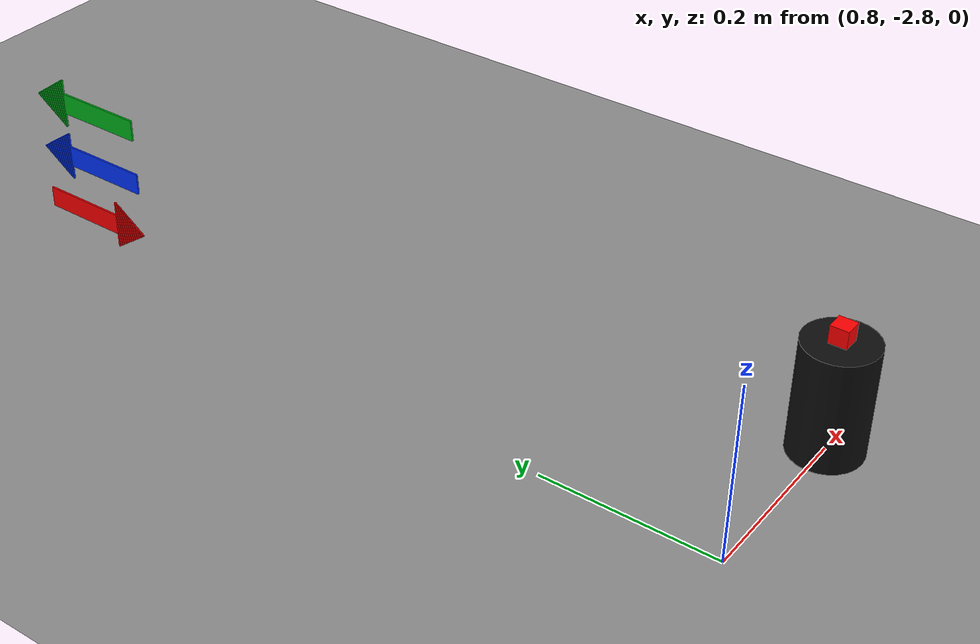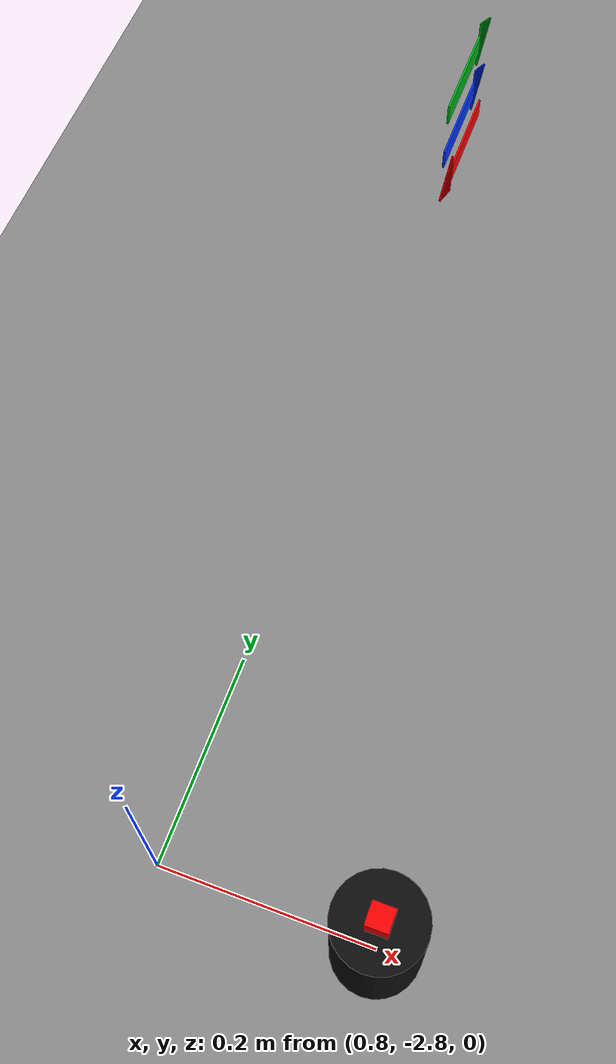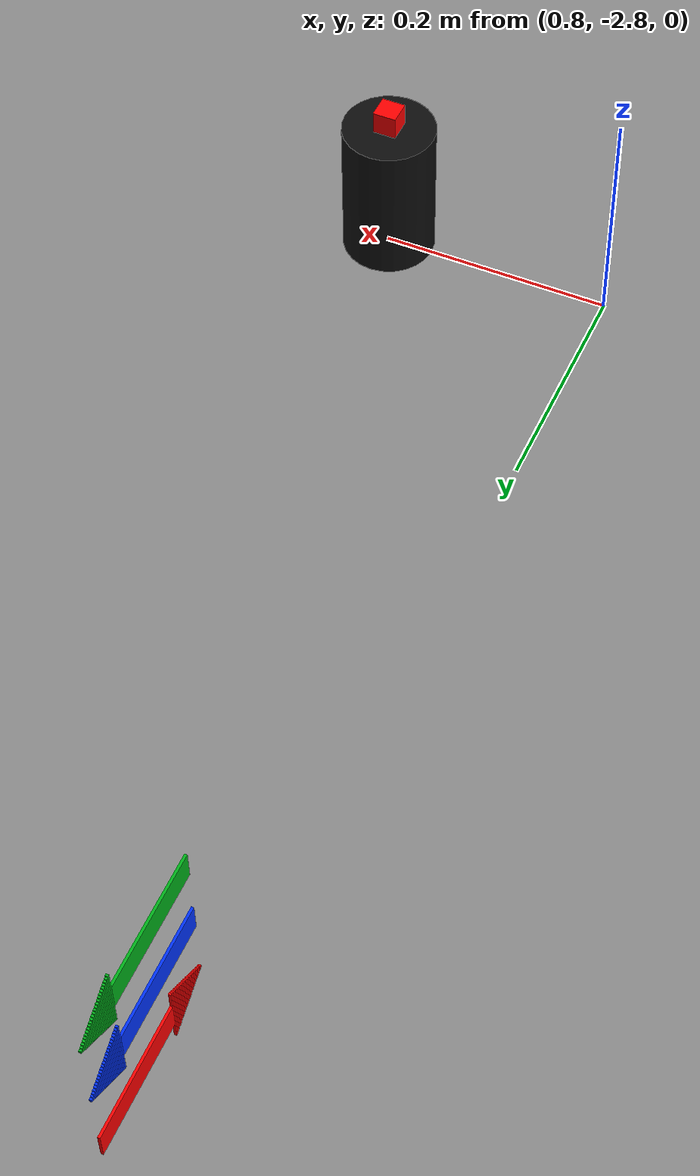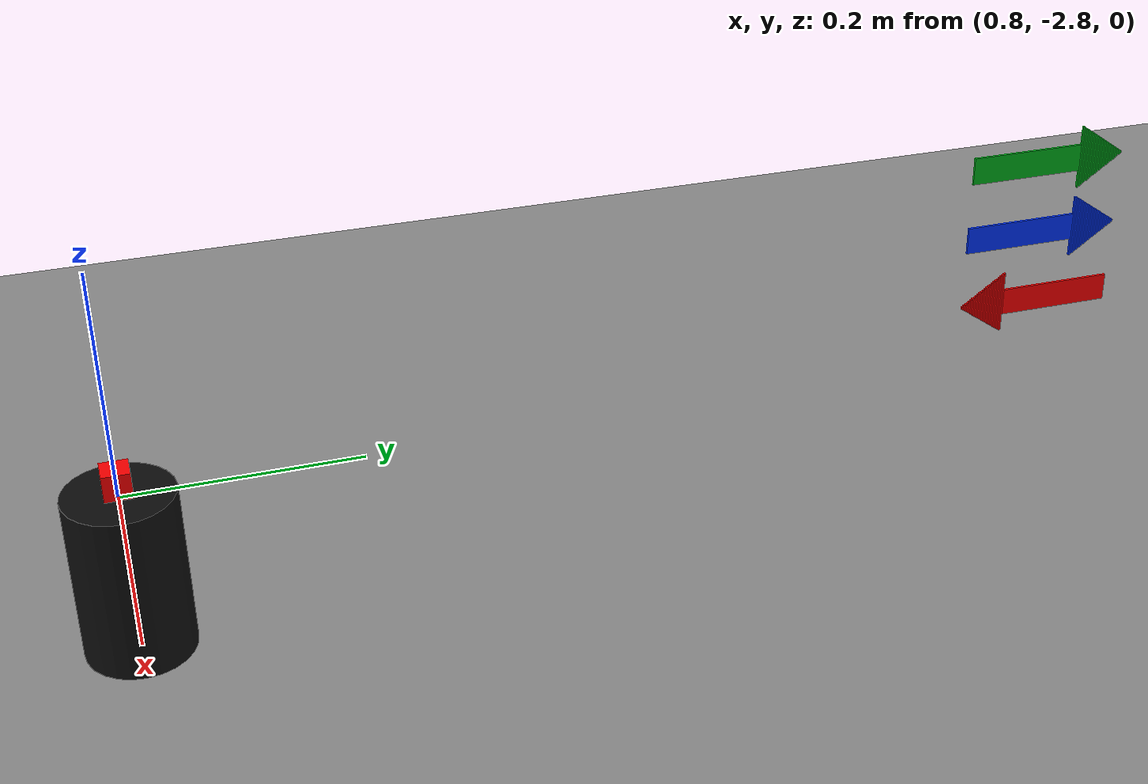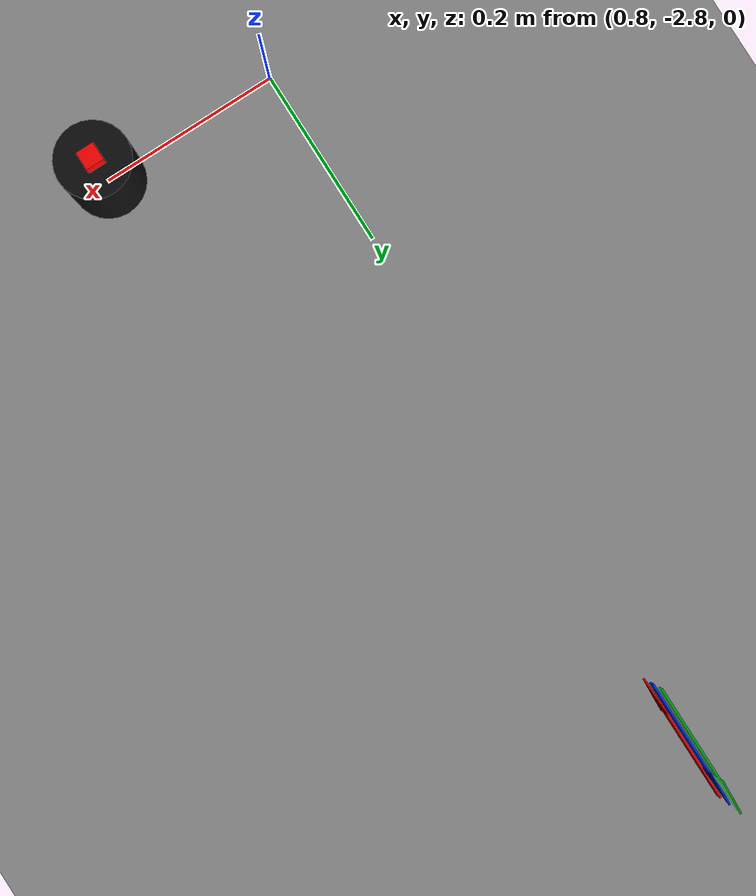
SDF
<sdf version="1.9">
 <world name="ros2_world">
  <model name="ground_plane">
   <static>true</static>
   <link name="link">
    <collision name="collision">
     <geometry><plane><normal>0 0 1</normal><size>10 10</size></plane></geometry>
    </collision>
    <visual name="visual">
     <geometry><plane><normal>0 0 1</normal><size>10 10</size></plane></geometry>
     <material><ambient>0.55 0.55 0.55 1</ambient><diffuse>0.55 0.55 0.55 1</diffuse></material>
    </visual>
   </link>
  </model>
  <model name="soporte_cubo_rojo">
   <static>true</static>
   <pose>1 -2.8 0.06425 0 0 0</pose>
   <link name="link">
    <collision name="colision">
     <geometry><cylinder><radius>0.04</radius><length>0.1285</length></cylinder></geometry>
    </collision>
    <visual name="visual">
     <geometry><cylinder><radius>0.04</radius><length>0.1285</length></cylinder></geometry>
     <material><ambient>0.05 0.05 0.05 1</ambient><diffuse>0.05 0.05 0.05 1</diffuse></material>
    </visual>
   </link>
  </model>
  <model name="cubo_rojo">
   <pose>1 -2.8 0.1387 0 0 0</pose>
   <link name="link">
    <inertial>
     <mass>0.0099</mass>
     <inertia>
      <ixx>6.6000e-07</ixx>
      <iyy>6.6000e-07</iyy>
      <izz>6.6000e-07</izz>
      <ixy>0</ixy>
      <ixz>0</ixz>
      <iyz>0</iyz>
     </inertia>
    </inertial>
    <collision name="colision">
     <geometry><box><size>0.02 0.02 0.02</size></box></geometry>
     <surface><friction><ode><mu>1</mu><mu2>1</mu2></ode></friction></surface>
    </collision>
    <visual name="visual">
     <geometry><box><size>0.02 0.02 0.02</size></box></geometry>
     <material><ambient>1 0 0 1</ambient><diffuse>1 0 0 1</diffuse></material>
    </visual>
   </link>
  </model>
  <model name="flechas">
   <static>true</static>
   <link name="flecha_3">
    <pose>0.814 -2 0.19 0 0 1.5708</pose>
    <visual name="p0">
     <pose>-0.02 0 0 0 0 0</pose>
     <geometry><box><size>0.1 0.002 0.024</size></box></geometry>
     <material><ambient>0 0.7 0.1 1</ambient><diffuse>0 0.7 0.1 1</diffuse></material>
    </visual>
    <visual name="p1">
     <pose>0.0308 0 0 0 0 0</pose>
     <geometry><box><size>0.0016 0.002 0.056</size></box></geometry>
     <material><ambient>0 0.7 0.1 1</ambient><diffuse>0 0.7 0.1 1</diffuse></material>
    </visual>
    <visual name="p2">
     <pose>0.0324 0 0 0 0 0</pose>
     <geometry><box><size>0.0016 0.002 0.05376</size></box></geometry>
     <material><ambient>0 0.7 0.1 1</ambient><diffuse>0 0.7 0.1 1</diffuse></material>
    </visual>
    <visual name="p3">
     <pose>0.034 0 0 0 0 0</pose>
     <geometry><box><size>0.0016 0.002 0.05152</size></box></geometry>
     <material><ambient>0 0.7 0.1 1</ambient><diffuse>0 0.7 0.1 1</diffuse></material>
    </visual>
    <visual name="p4">
     <pose>0.0356 0 0 0 0 0</pose>
     <geometry><box><size>0.0016 0.002 0.04928</size></box></geometry>
     <material><ambient>0 0.7 0.1 1</ambient><diffuse>0 0.7 0.1 1</diffuse></material>
    </visual>
    <visual name="p5">
     <pose>0.0372 0 0 0 0 0</pose>
     <geometry><box><size>0.0016 0.002 0.04704</size></box></geometry>
     <material><ambient>0 0.7 0.1 1</ambient><diffuse>0 0.7 0.1 1</diffuse></material>
    </visual>
    <visual name="p6">
     <pose>0.0388 0 0 0 0 0</pose>
     <geometry><box><size>0.0016 0.002 0.0448</size></box></geometry>
     <material><ambient>0 0.7 0.1 1</ambient><diffuse>0 0.7 0.1 1</diffuse></material>
    </visual>
    <visual name="p7">
     <pose>0.0404 0 0 0 0 0</pose>
     <geometry><box><size>0.0016 0.002 0.04256</size></box></geometry>
     <material><ambient>0 0.7 0.1 1</ambient><diffuse>0 0.7 0.1 1</diffuse></material>
    </visual>
    <visual name="p8">
     <pose>0.042 0 0 0 0 0</pose>
     <geometry><box><size>0.0016 0.002 0.04032</size></box></geometry>
     <material><ambient>0 0.7 0.1 1</ambient><diffuse>0 0.7 0.1 1</diffuse></material>
    </visual>
    <visual name="p9">
     <pose>0.0436 0 0 0 0 0</pose>
     <geometry><box><size>0.0016 0.002 0.03808</size></box></geometry>
     <material><ambient>0 0.7 0.1 1</ambient><diffuse>0 0.7 0.1 1</diffuse></material>
    </visual>
    <visual name="p10">
     <pose>0.0452 0 0 0 0 0</pose>
     <geometry><box><size>0.0016 0.002 0.03584</size></box></geometry>
     <material><ambient>0 0.7 0.1 1</ambient><diffuse>0 0.7 0.1 1</diffuse></material>
    </visual>
    <visual name="p11">
     <pose>0.0468 0 0 0 0 0</pose>
     <geometry><box><size>0.0016 0.002 0.0336</size></box></geometry>
     <material><ambient>0 0.7 0.1 1</ambient><diffuse>0 0.7 0.1 1</diffuse></material>
    </visual>
    <visual name="p12">
     <pose>0.0484 0 0 0 0 0</pose>
     <geometry><box><size>0.0016 0.002 0.03136</size></box></geometry>
     <material><ambient>0 0.7 0.1 1</ambient><diffuse>0 0.7 0.1 1</diffuse></material>
    </visual>
    <visual name="p13">
     <pose>0.05 0 0 0 0 0</pose>
     <geometry><box><size>0.0016 0.002 0.02912</size></box></geometry>
     <material><ambient>0 0.7 0.1 1</ambient><diffuse>0 0.7 0.1 1</diffuse></material>
    </visual>
    <visual name="p14">
     <pose>0.0516 0 0 0 0 0</pose>
     <geometry><box><size>0.0016 0.002 0.02688</size></box></geometry>
     <material><ambient>0 0.7 0.1 1</ambient><diffuse>0 0.7 0.1 1</diffuse></material>
    </visual>
    <visual name="p15">
     <pose>0.0532 0 0 0 0 0</pose>
     <geometry><box><size>0.0016 0.002 0.02464</size></box></geometry>
     <material><ambient>0 0.7 0.1 1</ambient><diffuse>0 0.7 0.1 1</diffuse></material>
    </visual>
    <visual name="p16">
     <pose>0.0548 0 0 0 0 0</pose>
     <geometry><box><size>0.0016 0.002 0.0224</size></box></geometry>
     <material><ambient>0 0.7 0.1 1</ambient><diffuse>0 0.7 0.1 1</diffuse></material>
    </visual>
    <visual name="p17">
     <pose>0.0564 0 0 0 0 0</pose>
     <geometry><box><size>0.0016 0.002 0.02016</size></box></geometry>
     <material><ambient>0 0.7 0.1 1</ambient><diffuse>0 0.7 0.1 1</diffuse></material>
    </visual>
    <visual name="p18">
     <pose>0.058 0 0 0 0 0</pose>
     <geometry><box><size>0.0016 0.002 0.01792</size></box></geometry>
     <material><ambient>0 0.7 0.1 1</ambient><diffuse>0 0.7 0.1 1</diffuse></material>
    </visual>
    <visual name="p19">
     <pose>0.0596 0 0 0 0 0</pose>
     <geometry><box><size>0.0016 0.002 0.01568</size></box></geometry>
     <material><ambient>0 0.7 0.1 1</ambient><diffuse>0 0.7 0.1 1</diffuse></material>
    </visual>
    <visual name="p20">
     <pose>0.0612 0 0 0 0 0</pose>
     <geometry><box><size>0.0016 0.002 0.01344</size></box></geometry>
     <material><ambient>0 0.7 0.1 1</ambient><diffuse>0 0.7 0.1 1</diffuse></material>
    </visual>
    <visual name="p21">
     <pose>0.0628 0 0 0 0 0</pose>
     <geometry><box><size>0.0016 0.002 0.0112</size></box></geometry>
     <material><ambient>0 0.7 0.1 1</ambient><diffuse>0 0.7 0.1 1</diffuse></material>
    </visual>
    <visual name="p22">
     <pose>0.0644 0 0 0 0 0</pose>
     <geometry><box><size>0.0016 0.002 0.00896</size></box></geometry>
     <material><ambient>0 0.7 0.1 1</ambient><diffuse>0 0.7 0.1 1</diffuse></material>
    </visual>
    <visual name="p23">
     <pose>0.066 0 0 0 0 0</pose>
     <geometry><box><size>0.0016 0.002 0.00672</size></box></geometry>
     <material><ambient>0 0.7 0.1 1</ambient><diffuse>0 0.7 0.1 1</diffuse></material>
    </visual>
    <visual name="p24">
     <pose>0.0676 0 0 0 0 0</pose>
     <geometry><box><size>0.0016 0.002 0.00448</size></box></geometry>
     <material><ambient>0 0.7 0.1 1</ambient><diffuse>0 0.7 0.1 1</diffuse></material>
    </visual>
    <visual name="p25">
     <pose>0.0692 0 0 0 0 0</pose>
     <geometry><box><size>0.0016 0.002 0.00224</size></box></geometry>
     <material><ambient>0 0.7 0.1 1</ambient><diffuse>0 0.7 0.1 1</diffuse></material>
    </visual>
   </link>
   <link name="flecha_4">
    <pose>0.814 -2 0.125 0 0 1.5708</pose>
    <visual name="p0">
     <pose>-0.02 0 0 0 0 0</pose>
     <geometry><box><size>0.1 0.002 0.024</size></box></geometry>
     <material><ambient>0 0.2 1 1</ambient><diffuse>0 0.2 1 1</diffuse></material>
    </visual>
    <visual name="p1">
     <pose>0.0308 0 0 0 0 0</pose>
     <geometry><box><size>0.0016 0.002 0.056</size></box></geometry>
     <material><ambient>0 0.2 1 1</ambient><diffuse>0 0.2 1 1</diffuse></material>
    </visual>
    <visual name="p2">
     <pose>0.0324 0 0 0 0 0</pose>
     <geometry><box><size>0.0016 0.002 0.05376</size></box></geometry>
     <material><ambient>0 0.2 1 1</ambient><diffuse>0 0.2 1 1</diffuse></material>
    </visual>
    <visual name="p3">
     <pose>0.034 0 0 0 0 0</pose>
     <geometry><box><size>0.0016 0.002 0.05152</size></box></geometry>
     <material><ambient>0 0.2 1 1</ambient><diffuse>0 0.2 1 1</diffuse></material>
    </visual>
    <visual name="p4">
     <pose>0.0356 0 0 0 0 0</pose>
     <geometry><box><size>0.0016 0.002 0.04928</size></box></geometry>
     <material><ambient>0 0.2 1 1</ambient><diffuse>0 0.2 1 1</diffuse></material>
    </visual>
    <visual name="p5">
     <pose>0.0372 0 0 0 0 0</pose>
     <geometry><box><size>0.0016 0.002 0.04704</size></box></geometry>
     <material><ambient>0 0.2 1 1</ambient><diffuse>0 0.2 1 1</diffuse></material>
    </visual>
    <visual name="p6">
     <pose>0.0388 0 0 0 0 0</pose>
     <geometry><box><size>0.0016 0.002 0.0448</size></box></geometry>
     <material><ambient>0 0.2 1 1</ambient><diffuse>0 0.2 1 1</diffuse></material>
    </visual>
    <visual name="p7">
     <pose>0.0404 0 0 0 0 0</pose>
     <geometry><box><size>0.0016 0.002 0.04256</size></box></geometry>
     <material><ambient>0 0.2 1 1</ambient><diffuse>0 0.2 1 1</diffuse></material>
    </visual>
    <visual name="p8">
     <pose>0.042 0 0 0 0 0</pose>
     <geometry><box><size>0.0016 0.002 0.04032</size></box></geometry>
     <material><ambient>0 0.2 1 1</ambient><diffuse>0 0.2 1 1</diffuse></material>
    </visual>
    <visual name="p9">
     <pose>0.0436 0 0 0 0 0</pose>
     <geometry><box><size>0.0016 0.002 0.03808</size></box></geometry>
     <material><ambient>0 0.2 1 1</ambient><diffuse>0 0.2 1 1</diffuse></material>
    </visual>
    <visual name="p10">
     <pose>0.0452 0 0 0 0 0</pose>
     <geometry><box><size>0.0016 0.002 0.03584</size></box></geometry>
     <material><ambient>0 0.2 1 1</ambient><diffuse>0 0.2 1 1</diffuse></material>
    </visual>
    <visual name="p11">
     <pose>0.0468 0 0 0 0 0</pose>
     <geometry><box><size>0.0016 0.002 0.0336</size></box></geometry>
     <material><ambient>0 0.2 1 1</ambient><diffuse>0 0.2 1 1</diffuse></material>
    </visual>
    <visual name="p12">
     <pose>0.0484 0 0 0 0 0</pose>
     <geometry><box><size>0.0016 0.002 0.03136</size></box></geometry>
     <material><ambient>0 0.2 1 1</ambient><diffuse>0 0.2 1 1</diffuse></material>
    </visual>
    <visual name="p13">
     <pose>0.05 0 0 0 0 0</pose>
     <geometry><box><size>0.0016 0.002 0.02912</size></box></geometry>
     <material><ambient>0 0.2 1 1</ambient><diffuse>0 0.2 1 1</diffuse></material>
    </visual>
    <visual name="p14">
     <pose>0.0516 0 0 0 0 0</pose>
     <geometry><box><size>0.0016 0.002 0.02688</size></box></geometry>
     <material><ambient>0 0.2 1 1</ambient><diffuse>0 0.2 1 1</diffuse></material>
    </visual>
    <visual name="p15">
     <pose>0.0532 0 0 0 0 0</pose>
     <geometry><box><size>0.0016 0.002 0.02464</size></box></geometry>
     <material><ambient>0 0.2 1 1</ambient><diffuse>0 0.2 1 1</diffuse></material>
    </visual>
    <visual name="p16">
     <pose>0.0548 0 0 0 0 0</pose>
     <geometry><box><size>0.0016 0.002 0.0224</size></box></geometry>
     <material><ambient>0 0.2 1 1</ambient><diffuse>0 0.2 1 1</diffuse></material>
    </visual>
    <visual name="p17">
     <pose>0.0564 0 0 0 0 0</pose>
     <geometry><box><size>0.0016 0.002 0.02016</size></box></geometry>
     <material><ambient>0 0.2 1 1</ambient><diffuse>0 0.2 1 1</diffuse></material>
    </visual>
    <visual name="p18">
     <pose>0.058 0 0 0 0 0</pose>
     <geometry><box><size>0.0016 0.002 0.01792</size></box></geometry>
     <material><ambient>0 0.2 1 1</ambient><diffuse>0 0.2 1 1</diffuse></material>
    </visual>
    <visual name="p19">
     <pose>0.0596 0 0 0 0 0</pose>
     <geometry><box><size>0.0016 0.002 0.01568</size></box></geometry>
     <material><ambient>0 0.2 1 1</ambient><diffuse>0 0.2 1 1</diffuse></material>
    </visual>
    <visual name="p20">
     <pose>0.0612 0 0 0 0 0</pose>
     <geometry><box><size>0.0016 0.002 0.01344</size></box></geometry>
     <material><ambient>0 0.2 1 1</ambient><diffuse>0 0.2 1 1</diffuse></material>
    </visual>
    <visual name="p21">
     <pose>0.0628 0 0 0 0 0</pose>
     <geometry><box><size>0.0016 0.002 0.0112</size></box></geometry>
     <material><ambient>0 0.2 1 1</ambient><diffuse>0 0.2 1 1</diffuse></material>
    </visual>
    <visual name="p22">
     <pose>0.0644 0 0 0 0 0</pose>
     <geometry><box><size>0.0016 0.002 0.00896</size></box></geometry>
     <material><ambient>0 0.2 1 1</ambient><diffuse>0 0.2 1 1</diffuse></material>
    </visual>
    <visual name="p23">
     <pose>0.066 0 0 0 0 0</pose>
     <geometry><box><size>0.0016 0.002 0.00672</size></box></geometry>
     <material><ambient>0 0.2 1 1</ambient><diffuse>0 0.2 1 1</diffuse></material>
    </visual>
    <visual name="p24">
     <pose>0.0676 0 0 0 0 0</pose>
     <geometry><box><size>0.0016 0.002 0.00448</size></box></geometry>
     <material><ambient>0 0.2 1 1</ambient><diffuse>0 0.2 1 1</diffuse></material>
    </visual>
    <visual name="p25">
     <pose>0.0692 0 0 0 0 0</pose>
     <geometry><box><size>0.0016 0.002 0.00224</size></box></geometry>
     <material><ambient>0 0.2 1 1</ambient><diffuse>0 0.2 1 1</diffuse></material>
    </visual>
   </link>
   <link name="flecha_5">
    <pose>0.814 -2 0.06 0 0 -1.5708</pose>
    <visual name="p0">
     <pose>-0.02 0 0 0 0 0</pose>
     <geometry><box><size>0.1 0.002 0.024</size></box></geometry>
     <material><ambient>1 0 0 1</ambient><diffuse>1 0 0 1</diffuse></material>
    </visual>
    <visual name="p1">
     <pose>0.0308 0 0 0 0 0</pose>
     <geometry><box><size>0.0016 0.002 0.056</size></box></geometry>
     <material><ambient>1 0 0 1</ambient><diffuse>1 0 0 1</diffuse></material>
    </visual>
    <visual name="p2">
     <pose>0.0324 0 0 0 0 0</pose>
     <geometry><box><size>0.0016 0.002 0.05376</size></box></geometry>
     <material><ambient>1 0 0 1</ambient><diffuse>1 0 0 1</diffuse></material>
    </visual>
    <visual name="p3">
     <pose>0.034 0 0 0 0 0</pose>
     <geometry><box><size>0.0016 0.002 0.05152</size></box></geometry>
     <material><ambient>1 0 0 1</ambient><diffuse>1 0 0 1</diffuse></material>
    </visual>
    <visual name="p4">
     <pose>0.0356 0 0 0 0 0</pose>
     <geometry><box><size>0.0016 0.002 0.04928</size></box></geometry>
     <material><ambient>1 0 0 1</ambient><diffuse>1 0 0 1</diffuse></material>
    </visual>
    <visual name="p5">
     <pose>0.0372 0 0 0 0 0</pose>
     <geometry><box><size>0.0016 0.002 0.04704</size></box></geometry>
     <material><ambient>1 0 0 1</ambient><diffuse>1 0 0 1</diffuse></material>
    </visual>
    <visual name="p6">
     <pose>0.0388 0 0 0 0 0</pose>
     <geometry><box><size>0.0016 0.002 0.0448</size></box></geometry>
     <material><ambient>1 0 0 1</ambient><diffuse>1 0 0 1</diffuse></material>
    </visual>
    <visual name="p7">
     <pose>0.0404 0 0 0 0 0</pose>
     <geometry><box><size>0.0016 0.002 0.04256</size></box></geometry>
     <material><ambient>1 0 0 1</ambient><diffuse>1 0 0 1</diffuse></material>
    </visual>
    <visual name="p8">
     <pose>0.042 0 0 0 0 0</pose>
     <geometry><box><size>0.0016 0.002 0.04032</size></box></geometry>
     <material><ambient>1 0 0 1</ambient><diffuse>1 0 0 1</diffuse></material>
    </visual>
    <visual name="p9">
     <pose>0.0436 0 0 0 0 0</pose>
     <geometry><box><size>0.0016 0.002 0.03808</size></box></geometry>
     <material><ambient>1 0 0 1</ambient><diffuse>1 0 0 1</diffuse></material>
    </visual>
    <visual name="p10">
     <pose>0.0452 0 0 0 0 0</pose>
     <geometry><box><size>0.0016 0.002 0.03584</size></box></geometry>
     <material><ambient>1 0 0 1</ambient><diffuse>1 0 0 1</diffuse></material>
    </visual>
    <visual name="p11">
     <pose>0.0468 0 0 0 0 0</pose>
     <geometry><box><size>0.0016 0.002 0.0336</size></box></geometry>
     <material><ambient>1 0 0 1</ambient><diffuse>1 0 0 1</diffuse></material>
    </visual>
    <visual name="p12">
     <pose>0.0484 0 0 0 0 0</pose>
     <geometry><box><size>0.0016 0.002 0.03136</size></box></geometry>
     <material><ambient>1 0 0 1</ambient><diffuse>1 0 0 1</diffuse></material>
    </visual>
    <visual name="p13">
     <pose>0.05 0 0 0 0 0</pose>
     <geometry><box><size>0.0016 0.002 0.02912</size></box></geometry>
     <material><ambient>1 0 0 1</ambient><diffuse>1 0 0 1</diffuse></material>
    </visual>
    <visual name="p14">
     <pose>0.0516 0 0 0 0 0</pose>
     <geometry><box><size>0.0016 0.002 0.02688</size></box></geometry>
     <material><ambient>1 0 0 1</ambient><diffuse>1 0 0 1</diffuse></material>
    </visual>
    <visual name="p15">
     <pose>0.0532 0 0 0 0 0</pose>
     <geometry><box><size>0.0016 0.002 0.02464</size></box></geometry>
     <material><ambient>1 0 0 1</ambient><diffuse>1 0 0 1</diffuse></material>
    </visual>
    <visual name="p16">
     <pose>0.0548 0 0 0 0 0</pose>
     <geometry><box><size>0.0016 0.002 0.0224</size></box></geometry>
     <material><ambient>1 0 0 1</ambient><diffuse>1 0 0 1</diffuse></material>
    </visual>
    <visual name="p17">
     <pose>0.0564 0 0 0 0 0</pose>
     <geometry><box><size>0.0016 0.002 0.02016</size></box></geometry>
     <material><ambient>1 0 0 1</ambient><diffuse>1 0 0 1</diffuse></material>
    </visual>
    <visual name="p18">
     <pose>0.058 0 0 0 0 0</pose>
     <geometry><box><size>0.0016 0.002 0.01792</size></box></geometry>
     <material><ambient>1 0 0 1</ambient><diffuse>1 0 0 1</diffuse></material>
    </visual>
    <visual name="p19">
     <pose>0.0596 0 0 0 0 0</pose>
     <geometry><box><size>0.0016 0.002 0.01568</size></box></geometry>
     <material><ambient>1 0 0 1</ambient><diffuse>1 0 0 1</diffuse></material>
    </visual>
    <visual name="p20">
     <pose>0.0612 0 0 0 0 0</pose>
     <geometry><box><size>0.0016 0.002 0.01344</size></box></geometry>
     <material><ambient>1 0 0 1</ambient><diffuse>1 0 0 1</diffuse></material>
    </visual>
    <visual name="p21">
     <pose>0.0628 0 0 0 0 0</pose>
     <geometry><box><size>0.0016 0.002 0.0112</size></box></geometry>
     <material><ambient>1 0 0 1</ambient><diffuse>1 0 0 1</diffuse></material>
    </visual>
    <visual name="p22">
     <pose>0.0644 0 0 0 0 0</pose>
     <geometry><box><size>0.0016 0.002 0.00896</size></box></geometry>
     <material><ambient>1 0 0 1</ambient><diffuse>1 0 0 1</diffuse></material>
    </visual>
    <visual name="p23">
     <pose>0.066 0 0 0 0 0</pose>
     <geometry><box><size>0.0016 0.002 0.00672</size></box></geometry>
     <material><ambient>1 0 0 1</ambient><diffuse>1 0 0 1</diffuse></material>
    </visual>
    <visual name="p24">
     <pose>0.0676 0 0 0 0 0</pose>
     <geometry><box><size>0.0016 0.002 0.00448</size></box></geometry>
     <material><ambient>1 0 0 1</ambient><diffuse>1 0 0 1</diffuse></material>
    </visual>
    <visual name="p25">
     <pose>0.0692 0 0 0 0 0</pose>
     <geometry><box><size>0.0016 0.002 0.00224</size></box></geometry>
     <material><ambient>1 0 0 1</ambient><diffuse>1 0 0 1</diffuse></material>
    </visual>
   </link>
  </model>
 </world>
</sdf>
